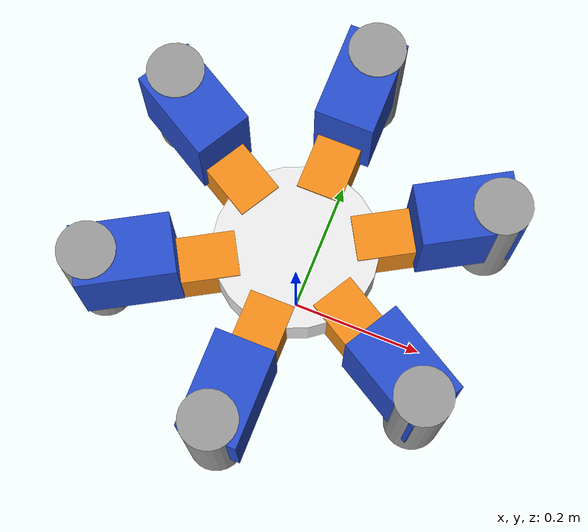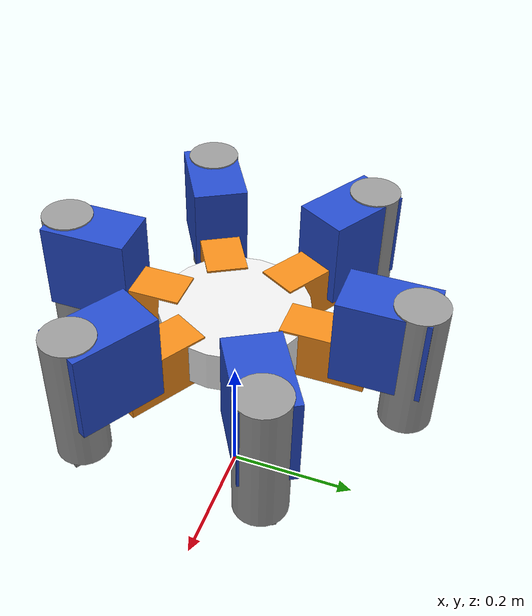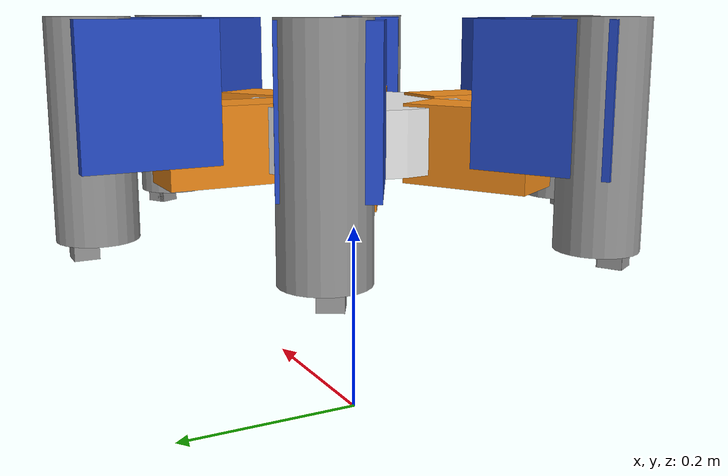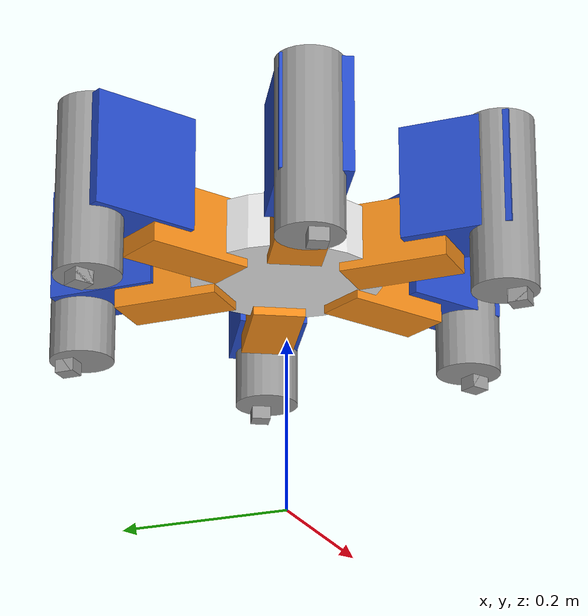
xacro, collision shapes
<?xml version="1.0"?>
<robot xmlns:xacro="http://www.ros.org/wiki/xacro" name="hexapod">

    <xacro:include filename="$(find hexapod_description)/robot/visual/inertial_macros.xacro" />
    <xacro:include filename="$(find hexapod_description)/robot/visual/hexapod_params.xacro" />
    <xacro:include filename="$(find hexapod_description)/robot/visual/robot_material.xacro" />
    <xacro:include filename="$(find hexapod_description)/robot/visual/gazebo_trajectory.xacro" />

    <!-- Property to enable/disable mesh rendering (for debugging) -->
    <xacro:property name="use_mesh" value="true" />

    <!-- WORLD LINK - Required for mesh rendering in Gazebo -->
    <link name="world"/>

    <!-- FIXED JOINT - Enables mesh rendering, keeps robot suspended for testing -->
    <!-- NOTE: For walking simulation, this should be removed and robot spawned on ground -->
    <joint name="world_to_base" type="fixed">
        <parent link="world"/>
        <child link="base_link"/>
        <origin xyz="0 0 0.3" rpy="0 0 0"/>
    </joint>

    <!-- BASE LINK -->
    <link name="base_link">
        <inertial>
            <origin xyz="9.6259709536084E-06 -6.03599555802636E-06 -0.0030214605278231" rpy="0 0 0" />
            <mass value="${mass_base}" />
            <inertia
                ixx="0.00164228924294238"
                ixy="-1.28564474462014E-09"
                ixz="8.22610664375957E-10"
                iyy="0.00164233674483393"
                iyz="-1.98002919852351E-10"
                izz="0.00328367106870498" />
        </inertial>
        <visual>
            <origin xyz="0 0 0" rpy="0 0 0" />
            <geometry>
                <mesh filename="package://hexapod_description/meshes/base_link.STL" />
            </geometry>
            <material name="white"/>
        </visual>
        <collision>
            <origin xyz="0 0 0.002" rpy="0 0 0" />
            <geometry>
                <cylinder radius="0.11" length="0.064"/>
            </geometry>
        </collision>
    </link>

    <!-- LEG MACRO -->
    <xacro:macro name="hexapod_leg" params="leg_num hip_origin_xyz hip_origin_rpy">

        <!-- HIP LINK -->
        <link name="hip_link_${leg_num}">
            <inertial>
                <origin xyz="0.0488185085747303 -0.00410063867439833 0.00163326248081042" rpy="0 0 0" />
                <mass value="${mass_hip}" />
                <inertia
                    ixx="9.38773089300775E-05"
                    ixy="8.87632856357308E-06"
                    ixz="2.7266876743089E-06"
                    iyy="0.000124049448056631"
                    iyz="-2.29027568962667E-07"
                    izz="0.00012170057198104" />
            </inertial>
            <visual>
                <origin xyz="0 0 0" rpy="0 0 0" />
                <geometry>
                    <mesh filename="package://hexapod_description/meshes/hip_link_1.STL" />
                </geometry>
                <material name="orange"/>
            </visual>
            <collision>
                <origin xyz="0.0445 -0.0013 -0.0015" rpy="0 0 0" />
                <geometry>
                    <box size="0.126 0.061 0.077"/>
                </geometry>
            </collision>
        </link>

        <!-- HIP JOINT -->
        <joint name="hip_joint_${leg_num}" type="revolute">
            <origin xyz="${hip_origin_xyz}" rpy="${hip_origin_rpy}" />
            <parent link="base_link" />
            <child link="hip_link_${leg_num}" />
            <axis xyz="0 0 1" />
            <limit effort="${joint_effort}" velocity="${joint_velocity}"
                   lower="${hip_lower_limit}" upper="${hip_upper_limit}" />
            <dynamics damping="${hip_damping}" friction="${hip_friction}"/>
        </joint>

        <!-- KNEE LINK -->
        <link name="knee_link_${leg_num}">
            <inertial>
                <origin xyz="-0.0475302249354476 -0.0303949843623502 -0.00382639103091394" rpy="0 0 0" />
                <mass value="${mass_knee}" />
                <inertia
                    ixx="0.000125689460160167"
                    ixy="-8.60189768522736E-05"
                    ixz="-1.49872305256315E-06"
                    iyy="0.000137645360683419"
                    iyz="-1.51278826167929E-06"
                    izz="0.000224456017656395" />
            </inertial>
            <visual>
                <origin xyz="0 0 0" rpy="0 0 0" />
                <geometry>
                    <mesh filename="package://hexapod_description/meshes/knee_link_1.STL" />
                </geometry>
                <material name="blue"/>
            </visual>
            <collision>
                <origin xyz="-0.0484 -0.0449 -0.0011" rpy="0 0 0" />
                <geometry>
                    <box size="0.134 0.129 0.080"/>
                </geometry>
            </collision>
        </link>

        <!-- KNEE JOINT -->
        <joint name="knee_joint_${leg_num}" type="revolute">
            <origin xyz="${knee_joint_x} ${knee_joint_y} ${knee_joint_z}"
                    rpy="1.5708 1.5708 3.142" />
            <parent link="hip_link_${leg_num}" />
            <child link="knee_link_${leg_num}" />
            <axis xyz="0 0 1" />
            <limit effort="${joint_effort}" velocity="${joint_velocity}"
                   lower="${knee_lower_limit}" upper="${knee_upper_limit}" />
            <dynamics damping="${knee_damping}" friction="${knee_friction}"/>
        </joint>

        <!-- ANKLE LINK -->
        <link name="ankle_link_${leg_num}">
            <inertial>
                <origin xyz="0.0767237006476303 -0.013659210334669 -0.00149577098480455" rpy="0 0 0" />
                <mass value="${mass_ankle}" />
                <inertia
                    ixx="0.000120289050869526"
                    ixy="1.98010146951448E-05"
                    ixz="-2.69503214059816E-06"
                    iyy="0.000196681888150522"
                    iyz="1.37145509688599E-06"
                    izz="0.000177107331195337" />
            </inertial>
            <visual>
                <origin xyz="0 0 0" rpy="0 0 0" />
                <geometry>
                    <mesh filename="package://hexapod_description/meshes/ankle_link_1.STL" />
                </geometry>
                <material name="grey"/>
            </visual>
            <collision>
                <origin xyz="0.0717 -0.0069 -0.0059" rpy="0 1.5708 0" />
                <geometry>
                    <cylinder radius="0.038" length="0.203"/>
                </geometry>
            </collision>
        </link>

        <!-- ANKLE JOINT -->
        <joint name="ankle_joint_${leg_num}" type="revolute">
            <origin xyz="${ankle_joint_x} ${ankle_joint_y} ${ankle_joint_z}" rpy="0 0 0" />
            <parent link="knee_link_${leg_num}" />
            <child link="ankle_link_${leg_num}" />
            <axis xyz="0 0 1" />
            <limit effort="${joint_effort}" velocity="${joint_velocity}"
                   lower="${ankle_lower_limit}" upper="${ankle_upper_limit}" />
            <dynamics damping="${ankle_damping}" friction="${ankle_friction}"/>
        </joint>

        <!-- FOOT POINTER LINK -->
        <link name="foot_pointer_${leg_num}">
            <inertial>
                <origin xyz="-0.0049782363018493 0.000584199635433796 1.01521888723546E-05" rpy="0 0 0" />
                <mass value="${mass_foot_pointer}" />
                <inertia
                    ixx="3.1794072605368E-07"
                    ixy="1.15940615410597E-08"
                    ixz="2.00382787922864E-10"
                    iyy="4.0938199625732E-07"
                    iyz="-5.71299980008936E-11"
                    izz="4.12726877457262E-07" />
            </inertial>
            <visual>
                <origin xyz="0 0 0" rpy="0 0 0" />
                <geometry>
                    <mesh filename="package://hexapod_description/meshes/foot_pointer_1.STL" />
                </geometry>
                <material name="grey"/>
            </visual>
            <collision>
                <origin xyz="-0.0081 0.0008 0" rpy="0 0 0" />
                <geometry>
                    <box size="0.032 0.023 0.022"/>
                </geometry>
            </collision>
        </link>

        <!-- FOOT POINTER JOINT -->
        <joint name="foot_pointer_joint_${leg_num}" type="fixed">
            <origin xyz="${foot_pointer_joint_x} ${foot_pointer_joint_y} 0" rpy="0 0 0" />
            <parent link="ankle_link_${leg_num}" />
            <child link="foot_pointer_${leg_num}" />
        </joint>

        <!-- END EFFECTOR LINK -->
        <link name="end_effector_${leg_num}">
            <inertial>
                <origin xyz="-0.0122067463278634 0.00152370640892938 6.47355637194841E-06" rpy="0 0 0" />
                <mass value="${mass_end_effector}" />
                <inertia
                    ixx="3.11902997781583E-07"
                    ixy="1.22998576021055E-08"
                    ixz="2.12679032607798E-10"
                    iyy="4.0890866624375E-07"
                    iyz="4.13472457938764E-11"
                    izz="4.06602736445781E-07" />
            </inertial>
            <visual>
                <origin xyz="0 0 0" rpy="0 0 0" />
                <geometry>
                    <mesh filename="package://hexapod_description/meshes/end_effector_1.STL" />
                </geometry>
                <material name="grey"/>
            </visual>
            <collision>
                <origin xyz="-0.0157 0.0014 0" rpy="0 0 0" />
                <geometry>
                    <box size="0.032 0.022 0.022"/>
                </geometry>
            </collision>
        </link>

        <!-- END EFFECTOR JOINT -->
        <joint name="end_effector_joint_${leg_num}" type="fixed">
            <origin xyz="${end_effector_joint_x} ${end_effector_joint_y} 0" rpy="0 0 0" />
            <parent link="foot_pointer_${leg_num}" />
            <child link="end_effector_${leg_num}" />
        </joint>

        <!-- FOOT CONTACT SPHERE -->
        <link name="foot_contact_${leg_num}">
            <xacro:inertial_sphere mass="${foot_contact_mass}" radius="${foot_contact_radius}">
                <origin xyz="0 0 0" rpy="0 0 0"/>
            </xacro:inertial_sphere>
            <visual>
                <origin xyz="0 0 0" rpy="0 0 0"/>
                <geometry>
                    <sphere radius="${foot_contact_radius}"/>
                </geometry>
                <material name="black"/>
            </visual>
            <collision>
                <origin xyz="0 0 0" rpy="0 0 0"/>
                <geometry>
                    <sphere radius="${foot_contact_radius}"/>
                </geometry>
            </collision>
        </link>

        <!-- FOOT CONTACT JOINT -->
        <joint name="foot_contact_joint_${leg_num}" type="fixed">
            <origin xyz="-0.012 0.0015 0" rpy="0 0 0" />
            <parent link="end_effector_${leg_num}" />
            <child link="foot_contact_${leg_num}" />
        </joint>

    </xacro:macro>

    <!-- INSTANTIATE 6 LEGS - Using correct hexagonal layout from hexapod.xacro -->
    <xacro:hexapod_leg leg_num="1"
                       hip_origin_xyz="-1.2616E-05 -0.095255 0"
                       hip_origin_rpy="0 0 -1.5708" />

    <xacro:hexapod_leg leg_num="2"
                       hip_origin_xyz="0.082487 -0.047638 0"
                       hip_origin_rpy="0 0 -0.5236" />

    <xacro:hexapod_leg leg_num="3"
                       hip_origin_xyz="0.082499 0.047616 0"
                       hip_origin_rpy="0 0 0.5236" />

    <xacro:hexapod_leg leg_num="4"
                       hip_origin_xyz="1.2616E-05 0.095255 0"
                       hip_origin_rpy="0 0 1.5708" />

    <xacro:hexapod_leg leg_num="5"
                       hip_origin_xyz="-0.082487 0.047638 0"
                       hip_origin_rpy="0 0 2.618" />

    <xacro:hexapod_leg leg_num="6"
                       hip_origin_xyz="-0.082499 -0.047616 0"
                       hip_origin_rpy="0 0 -2.618" />

</robot>

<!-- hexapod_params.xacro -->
<robot xmlns:xacro="http://www.ros.org/wiki/xacro">

    <!-- Constants -->
    <xacro:property name="PI" value="3.14159265359"/>

    <!-- MASSES (kg) -->
    <xacro:property name="mass_base" value="0.652718423695264"/>
    <xacro:property name="mass_hip" value="0.0882011859976947"/>
    <xacro:property name="mass_knee" value="0.155431239013057"/>
    <xacro:property name="mass_ankle" value="0.31955999801834"/>
    <xacro:property name="mass_foot_pointer" value="0.00634138756461707"/>
    <xacro:property name="mass_end_effector" value="0.00616673794613409"/>

    <!-- JOINT POSITIONS (meters) -->
    <!-- Knee joint relative to hip -->
    <xacro:property name="knee_joint_x" value="0.078424"/>
    <xacro:property name="knee_joint_y" value="-0.0031746"/>
    <xacro:property name="knee_joint_z" value="0.0010006"/>

    <!-- Ankle joint relative to knee -->
    <xacro:property name="ankle_joint_x" value="-0.087752"/>
    <xacro:property name="ankle_joint_y" value="-0.081834"/>
    <xacro:property name="ankle_joint_z" value="0"/>

    <!-- Foot pointer relative to ankle -->
    <xacro:property name="foot_pointer_joint_x" value="0.18098"/>
    <xacro:property name="foot_pointer_joint_y" value="-0.022156"/>

    <!-- End effector relative to foot pointer -->
    <xacro:property name="end_effector_joint_x" value="0.0075528"/>
    <xacro:property name="end_effector_joint_y" value="-0.00094278"/>

    <!-- JOINT LIMITS (radians) -->
    <xacro:property name="joint_effort" value="20.0"/>
    <xacro:property name="joint_velocity" value="5.0"/>

    <!-- Hip joint limits -->
    <xacro:property name="hip_lower_limit" value="-1.57"/>
    <xacro:property name="hip_upper_limit" value="1.57"/>

    <!-- Knee joint limits -->
    <xacro:property name="knee_lower_limit" value="-3.14"/>
    <xacro:property name="knee_upper_limit" value="3.14"/>

    <!-- Ankle joint limits -->
    <xacro:property name="ankle_lower_limit" value="-3.14"/>
    <xacro:property name="ankle_upper_limit" value="3.14"/>

    <!-- JOINT DYNAMICS -->
    <!-- Hip joint - Updated for PID tuning -->
    <xacro:property name="hip_damping" value="0.019728"/>
    <xacro:property name="hip_friction" value="0.01"/>

    <!-- Knee joint - Updated for PID tuning -->
    <xacro:property name="knee_damping" value="0.1"/>  <!-- INCREASED to reduce oscillation -->
    <xacro:property name="knee_friction" value="0.01"/>

    <!-- Ankle joint - Updated for PID tuning -->
    <xacro:property name="ankle_damping" value="0.019728"/>
    <xacro:property name="ankle_friction" value="0.01"/>

<!-- FOOT CONTACT PARAMETERS -->
    <xacro:property name="foot_contact_radius" value="0.01"/>
    <xacro:property name="foot_contact_mass" value="0.001"/>

</robot>
